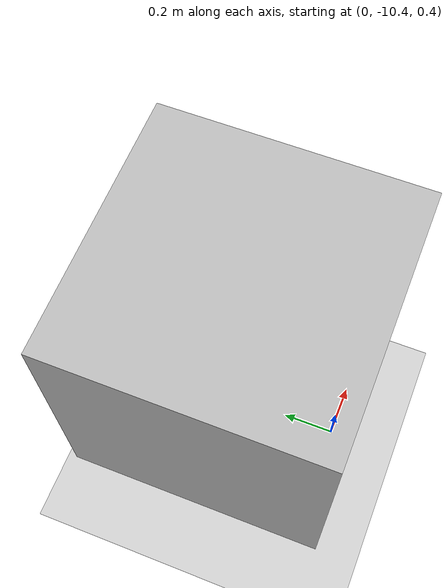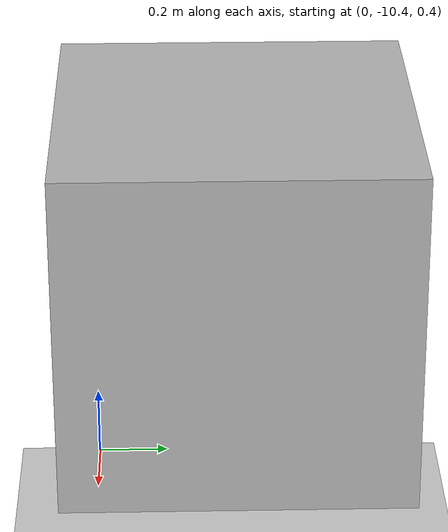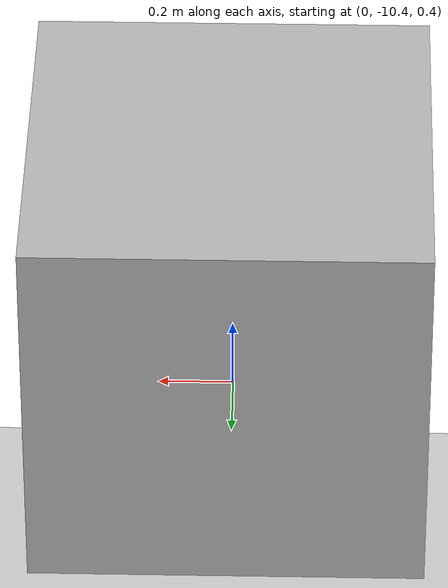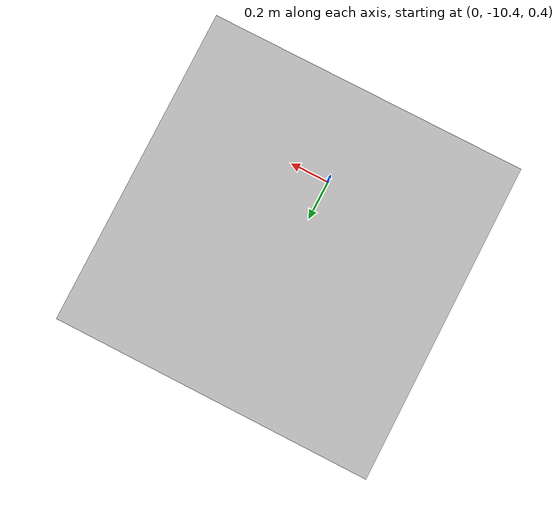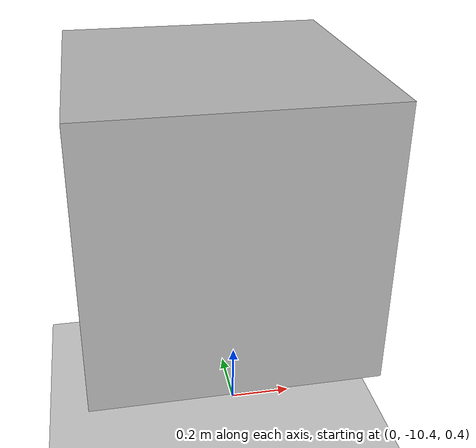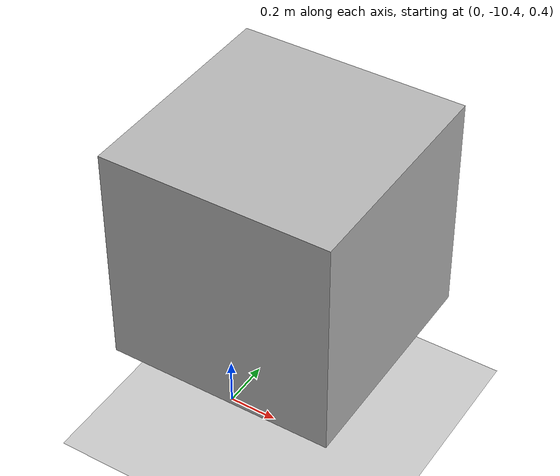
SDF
<?xml version="1.0" ?>

<sdf version="1.6">
  <world name="empty">
    <physics name="1ms" type="ignored">
      <max_step_size>0.001</max_step_size>
      <real_time_factor>1.0</real_time_factor>
    </physics>
    <plugin
      filename="gz-sim-physics-system"
      name="gz::sim::systems::Physics">
    </plugin>
    <plugin
      filename="gz-sim-user-commands-system"
      name="gz::sim::systems::UserCommands">
    </plugin>
    <plugin
      filename="gz-sim-scene-broadcaster-system"
      name="gz::sim::systems::SceneBroadcaster">
    </plugin>

    <light type="directional" name="sun">
      <cast_shadows>true</cast_shadows>
      <pose>0 0 10 0 0 0</pose>
      <diffuse>0.8 0.8 0.8 1</diffuse>
      <specular>0.2 0.2 0.2 1</specular>
      <attenuation>
        <range>1000</range>
        <constant>0.9</constant>
        <linear>0.01</linear>
        <quadratic>0.001</quadratic>
      </attenuation>
      <direction>-0.5 0.1 -0.9</direction>
    </light>

    <!-- base wind velocity: x y z, m/s -->
    <wind>
      <linear_velocity>0 1 0</linear_velocity>
    </wind>

     <plugin
    filename="gz-sim-wind-effects-system"
    name="gz::sim::systems::WindEffects">
    <force_approximation_scaling_factor>1</force_approximation_scaling_factor>

    <horizontal>
    <magnitude>
      <time_for_rise>0.2</time_for_rise>

      <sin>
        <amplitude_percent>1.0</amplitude_percent>
        <period>3</period>
      </sin>
    </magnitude>
  </horizontal>
  </plugin>

    <model name="ground_plane">
      <static>true</static>
      <link name="link">
        <collision name="collision">
          <geometry>
            <plane>
              <normal>0 0 1</normal>
              <size>100 100</size>
            </plane>
          </geometry>
          <surface>
            <friction>
              <ode>
                <mu>0.01</mu>
                <mu2>0.01</mu2>
              </ode>
            </friction>
          </surface>
        </collision>
        <visual name="visual">
          <geometry>
            <plane>
              <normal>0 0 1</normal>
              <size>100 100</size>
            </plane>
          </geometry>
          <material>
            <ambient>0.8 0.8 0.8 1</ambient>
            <diffuse>0.8 0.8 0.8 1</diffuse>
            <specular>0.8 0.8 0.8 1</specular>
          </material>
        </visual>
      </link>
    </model>

    <model name="box">
    <pose>0 -10 1 0 0 0</pose>
    <enable_wind>true</enable_wind>

    <link name="link">
      <!-- Important: wind acts on links, not the whole model. -->
      <enable_wind>true</enable_wind>

      <inertial>
        <mass>0.02</mass>
        <inertia>
          <ixx>0.003333</ixx><iyy>0.003333</iyy><izz>0.003333</izz>
        </inertia>
      </inertial>

      <collision name="collision">
        <geometry>
          <box>
            <size>1 1 1</size>
          </box>
        </geometry>
        <surface>
          <friction>
            <ode>
              <mu>0.01</mu>
              <mu2>0.01</mu2>
            </ode>
          </friction>
        </surface>
      </collision>

      <visual name="visual">
        <geometry>
          <box>
            <size>1 1 1</size>
          </box>
        </geometry>
      </visual>
    </link>
  </model>
  </world>
</sdf>
